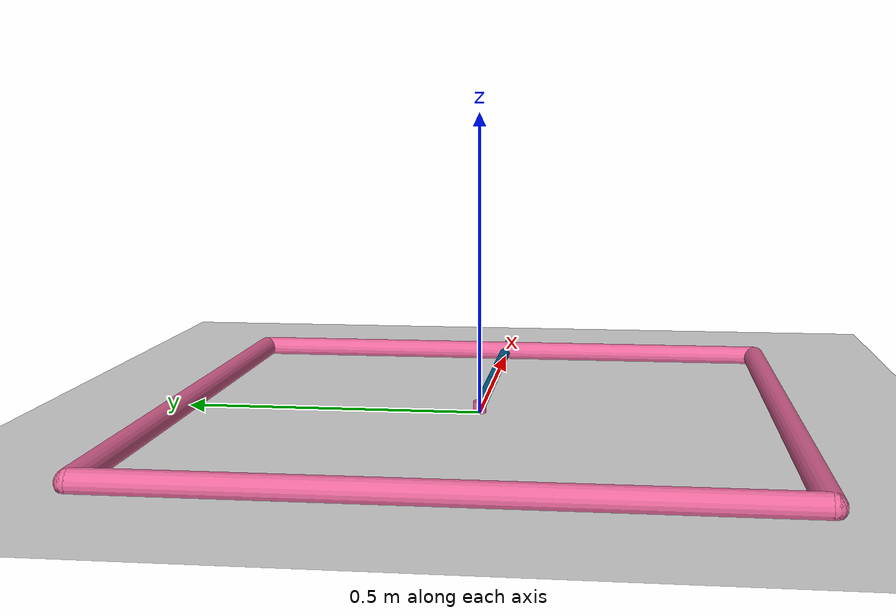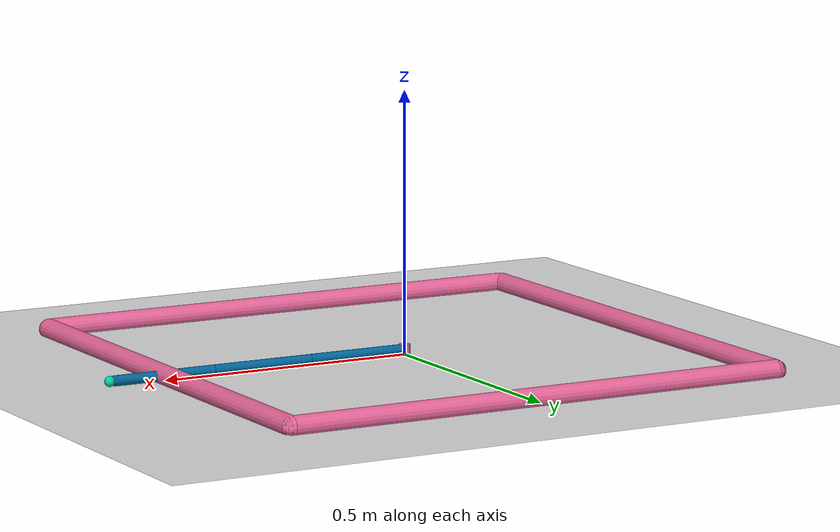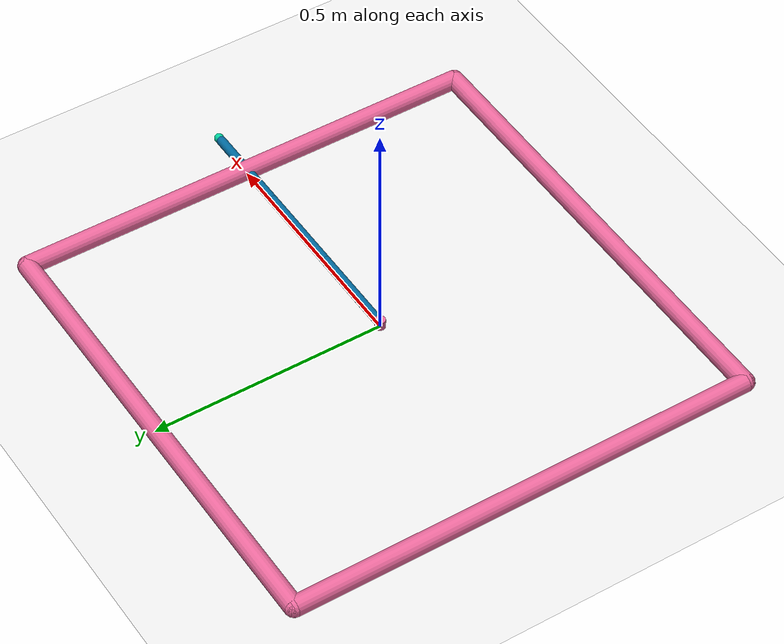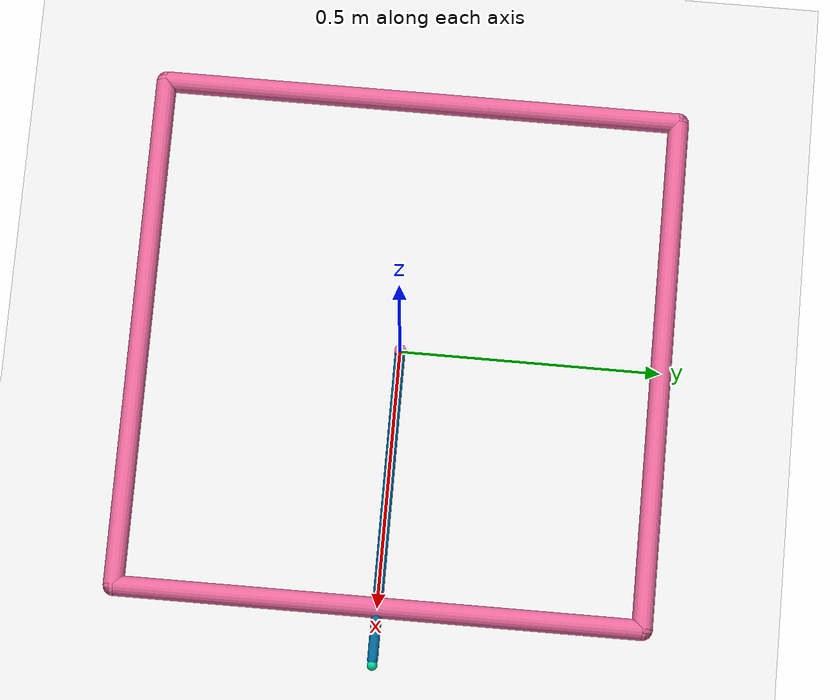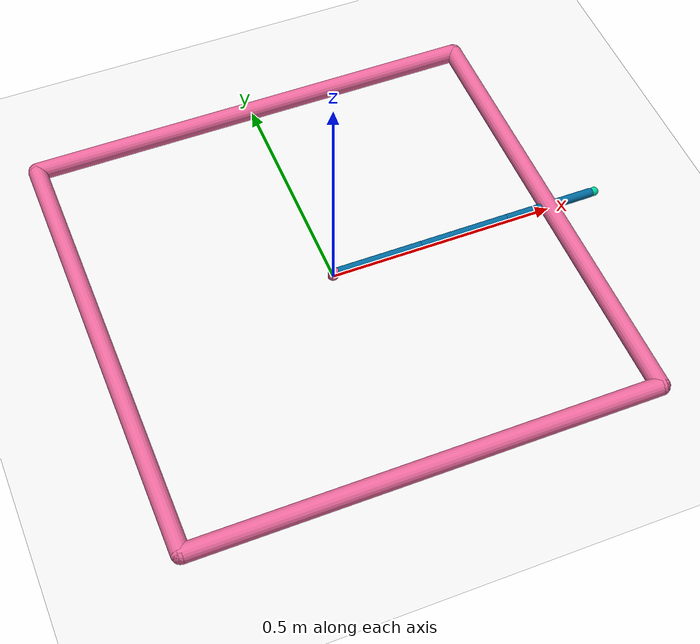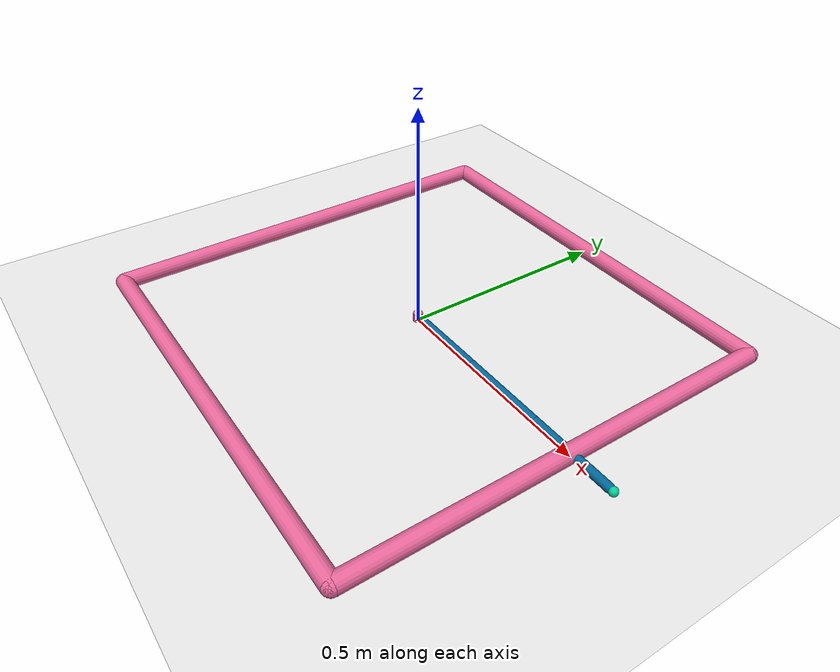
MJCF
<mujoco model="reacher7">
	<compiler angle="radian" inertiafromgeom="true"/>
	<default>
		<joint armature="1" damping="1" limited="true"/>
		<geom contype="0" friction="1 0.1 0.1" rgba="0.7 0.7 0 1"/>
	</default>
	<option gravity="0 0 -9.81" integrator="RK4" timestep="0.01"/>
	<worldbody>
		<!-- Arena -->
		<geom conaffinity="0" contype="0" name="ground" pos="0 0 0" rgba="0.9 0.9 0.9 1" size="1 1 10" type="plane"/>
		<geom conaffinity="0" fromto="-.5 -.5 .01 .5 -.5 .01" name="sideS" rgba="0.9 0.4 0.6 1" size=".02" type="capsule"/>
		<geom conaffinity="0" fromto=" .5 -.5 .01 .5  .5 .01" name="sideE" rgba="0.9 0.4 0.6 1" size=".02" type="capsule"/>
		<geom conaffinity="0" fromto="-.5  .5 .01 .5  .5 .01" name="sideN" rgba="0.9 0.4 0.6 1" size=".02" type="capsule"/>
		<geom conaffinity="0" fromto="-.5 -.5 .01 -.5 .5 .01" name="sideW" rgba="0.9 0.4 0.6 1" size=".02" type="capsule"/>
		<!-- Arm -->
		<geom conaffinity="0" contype="0" fromto="0 0 0 0 0 0.02" name="root" rgba="0.9 0.4 0.6 1" size=".011" type="cylinder"/>
		<body name="body0" pos="0 0 0.01">
			<joint name="joint0" axis="0 0 1" limited="false" pos="0 0 0" type="hinge"/>
			<joint name="joint1" axis="0 1 0" limited="true" range="-3.0 0" pos="0 0 0" type="hinge"/>
			<geom name="link0" fromto="0 0 0 0.2 0 0" rgba="0.0 0.4 0.6 1" size=".01" type="capsule"/>
			<body name="body1" pos="0.2 0 0">
				<joint name="joint2" axis="1 0 0" limited="false" pos="0 0 0" type="hinge"/>
				<joint name="joint3" axis="0 1 0" limited="true" range="-3.0 0" pos="0 0 0" type="hinge"/>
				<geom name="link1" fromto="0 0 0 0.2 0 0" rgba="0.0 0.4 0.6 1" size=".01" type="capsule"/>
				<body name="body2" pos="0.2 0 0">
					<joint name="joint4" axis="1 0 0" limited="false" pos="0 0 0" type="hinge"/>
					<joint name="joint5" axis="0 1 0" limited="true" range="-3.0 0" pos="0 0 0" type="hinge"/>
					<geom name="link2" fromto="0 0 0 0.2 0 0" rgba="0.0 0.4 0.6 1" size=".01" type="capsule"/>
					<body name="fingertip" pos="0.21 0 0">
						<geom contype="0" name="fingertip" pos="0 0 0" rgba="0.0 0.8 0.6 1" size=".01" type="sphere"/>
					</body>
				</body>
			</body>
		</body>
		<!-- Target -->
		<body name="target" pos="0 0 .01">
			<joint armature="0" axis="1 0 0" damping="0" limited="true" name="target_x" pos="0 0 0" range="-.47 .47" stiffness="0" type="slide"/>
			<joint armature="0" axis="0 1 0" damping="0" limited="true" name="target_y" pos="0 0 0" range="-.47 .47" stiffness="0" type="slide"/>
			<joint armature="0" axis="0 0 1" damping="0" limited="true" name="target_z" pos="0 0 0" range="0 .47" stiffness="0" type="slide"/>
			<geom conaffinity="0" contype="0" name="target" pos="0 0 0" rgba="0.9 0.2 0.2 1" size=".009" type="sphere"/>
		</body>
	</worldbody>
	<actuator>
		<motor joint="joint0" ctrllimited="true" ctrlrange="-1.0 1.0" gear="200.0"/>
		<motor joint="joint1" ctrllimited="true" ctrlrange="-1.0 1.0" gear="500.0"/>
		<motor joint="joint2" ctrllimited="true" ctrlrange="-1.0 1.0" gear="200.0"/>
		<motor joint="joint3" ctrllimited="true" ctrlrange="-1.0 1.0" gear="500.0"/>
		<motor joint="joint4" ctrllimited="true" ctrlrange="-1.0 1.0" gear="200.0"/>
		<motor joint="joint5" ctrllimited="true" ctrlrange="-1.0 1.0" gear="500.0"/>
	</actuator>
</mujoco>
